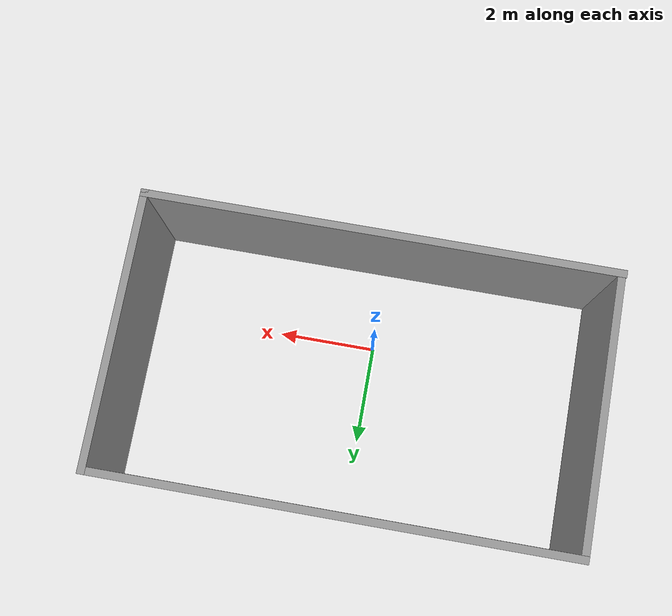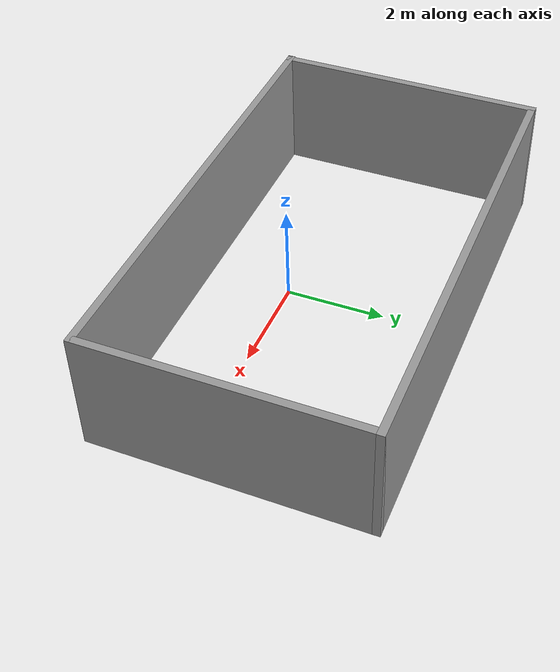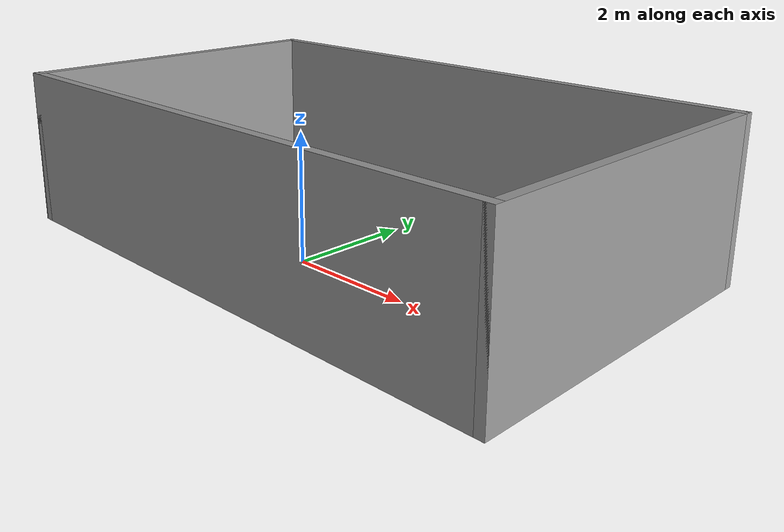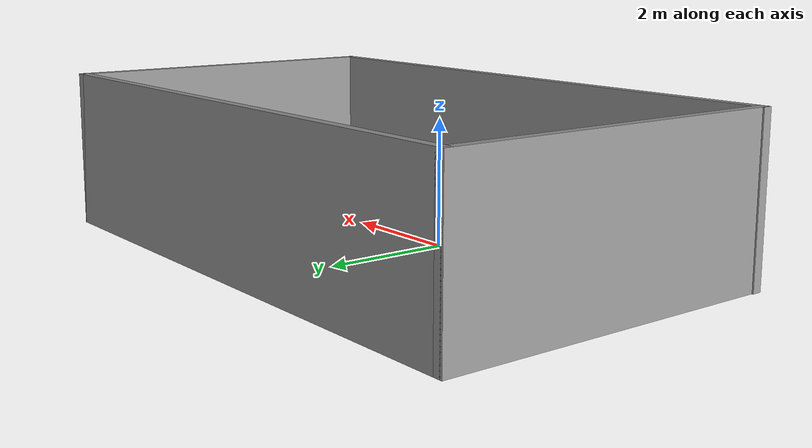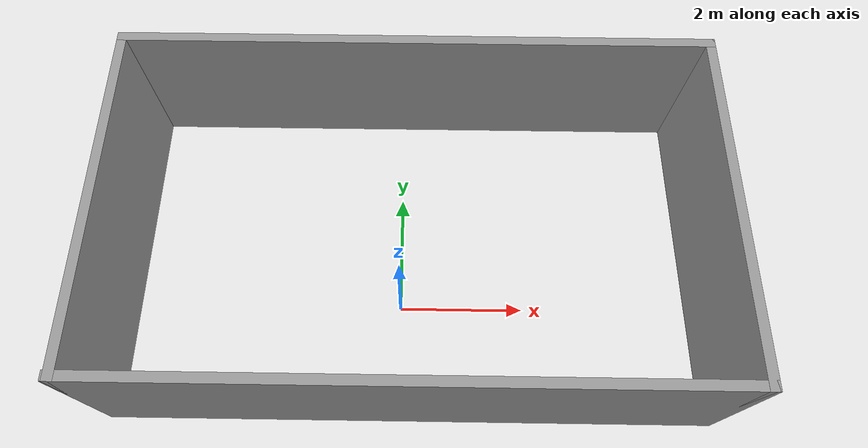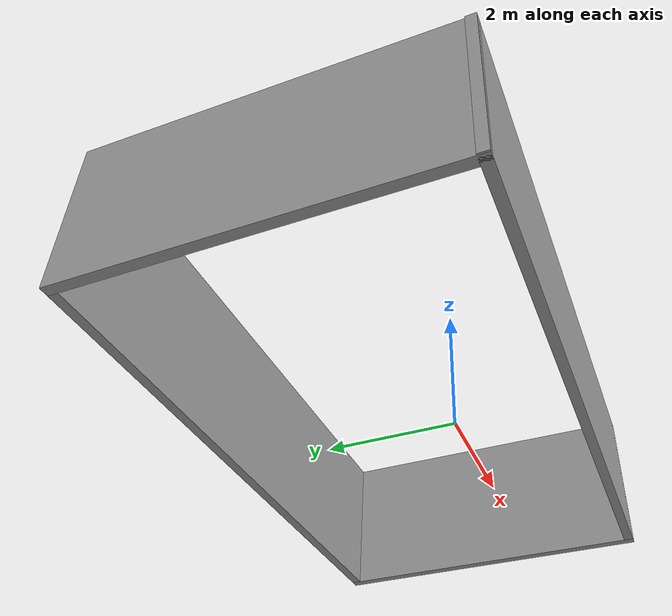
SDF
<?xml version='1.0'?>
<sdf version='1.7'>
  <model name='rectangle'>
    <pose>0.1755 0.917003 0 0 -0 0</pose>
    <link name='Wall_10'>
      <collision name='Wall_10_Collision'>
        <geometry>
          <box>
            <size>9.33624 0.15 2.5</size>
          </box>
        </geometry>
        <pose>0 0 1.25 0 -0 0</pose>
      </collision>
      <visual name='Wall_10_Visual'>
        <pose>0 0 1.25 0 -0 0</pose>
        <geometry>
          <box>
            <size>9.33624 0.15 2.5</size>
          </box>
        </geometry>
        <material>
          <script>
            <uri>file://media/materials/scripts/gazebo.material</uri>
            <name>Gazebo/Grey</name>
          </script>
          <ambient>1 1 1 1</ambient>
        </material>
        <meta>
          <layer>0</layer>
        </meta>
      </visual>
      <pose>0.011697 2.675 0 0 -0 0</pose>
    </link>
    <link name='Wall_5'>
      <collision name='Wall_5_Collision'>
        <geometry>
          <box>
            <size>5.5 0.15 2.5</size>
          </box>
        </geometry>
        <pose>0 0 1.25 0 -0 0</pose>
      </collision>
      <visual name='Wall_5_Visual'>
        <pose>0 0 1.25 0 -0 0</pose>
        <geometry>
          <box>
            <size>5.5 0.15 2.5</size>
          </box>
        </geometry>
        <material>
          <script>
            <uri>file://media/materials/scripts/gazebo.material</uri>
            <name>Gazebo/Grey</name>
          </script>
          <ambient>1 1 1 1</ambient>
        </material>
        <meta>
          <layer>0</layer>
        </meta>
      </visual>
      <pose>-4.58142 0 0 0 -0 1.5708</pose>
    </link>
    <link name='Wall_7'>
      <collision name='Wall_7_Collision'>
        <geometry>
          <box>
            <size>9.35964 0.15 2.5</size>
          </box>
        </geometry>
        <pose>0 0 1.25 0 -0 0</pose>
      </collision>
      <visual name='Wall_7_Visual'>
        <pose>0 0 1.25 0 -0 0</pose>
        <geometry>
          <box>
            <size>9.35964 0.15 2.5</size>
          </box>
        </geometry>
        <material>
          <script>
            <uri>file://media/materials/scripts/gazebo.material</uri>
            <name>Gazebo/Grey</name>
          </script>
          <ambient>1 1 1 1</ambient>
        </material>
        <meta>
          <layer>0</layer>
        </meta>
      </visual>
      <pose>-0 -2.675 0 0 -0 0</pose>
    </link>
    <link name='Wall_8'>
      <collision name='Wall_8_Collision'>
        <geometry>
          <box>
            <size>5.5 0.15 2.5</size>
          </box>
        </geometry>
        <pose>0 0 1.25 0 -0 0</pose>
      </collision>
      <visual name='Wall_8_Visual'>
        <pose>0 0 1.25 0 -0 0</pose>
        <geometry>
          <box>
            <size>5.5 0.15 2.5</size>
          </box>
        </geometry>
        <material>
          <script>
            <uri>file://media/materials/scripts/gazebo.material</uri>
            <name>Gazebo/Grey</name>
          </script>
          <ambient>1 1 1 1</ambient>
        </material>
        <meta>
          <layer>0</layer>
        </meta>
      </visual>
      <pose>4.60482 0 0 0 -0 1.5708</pose>
    </link>
    <static>1</static>
  </model>
</sdf>
